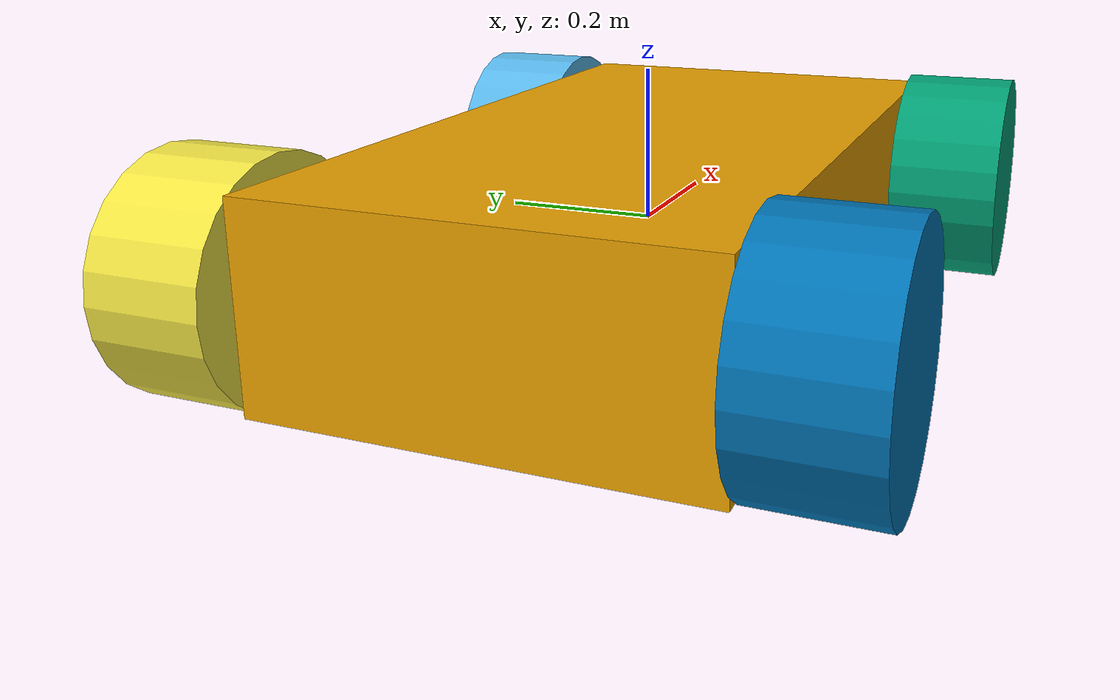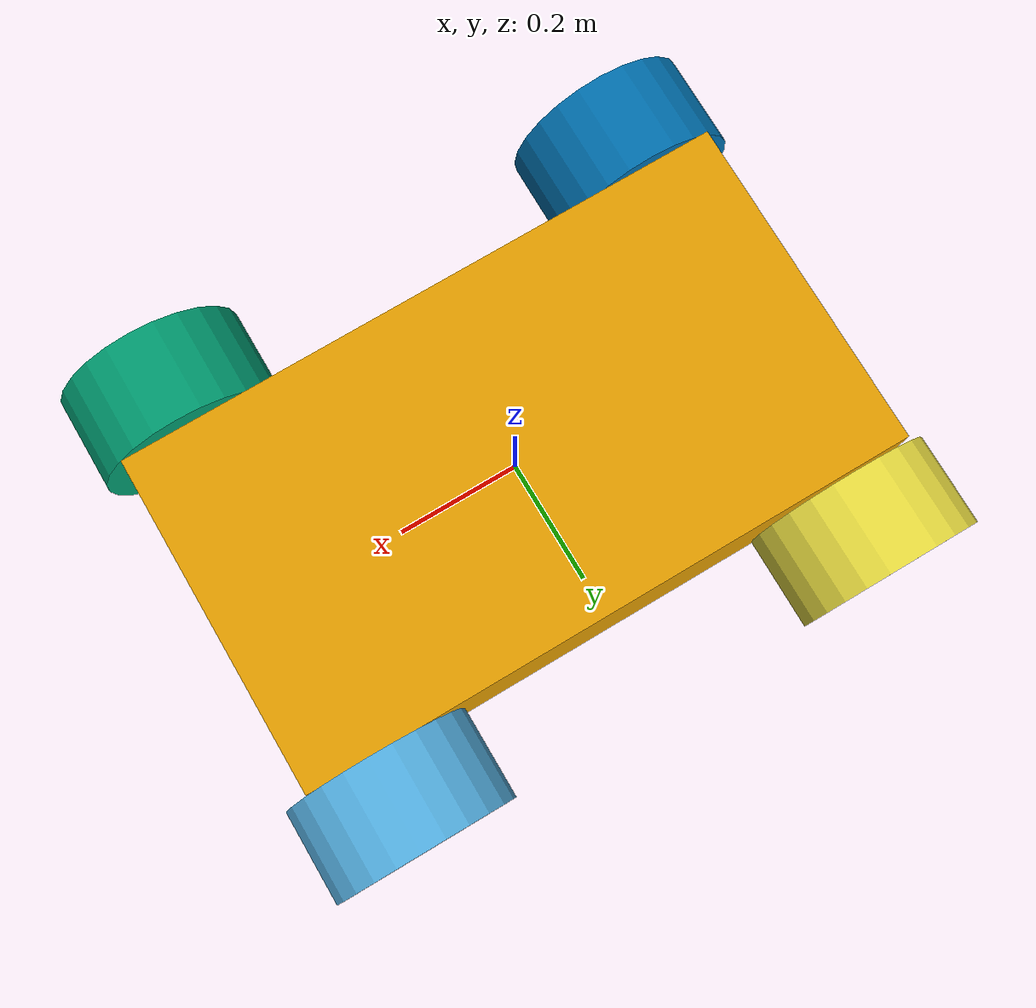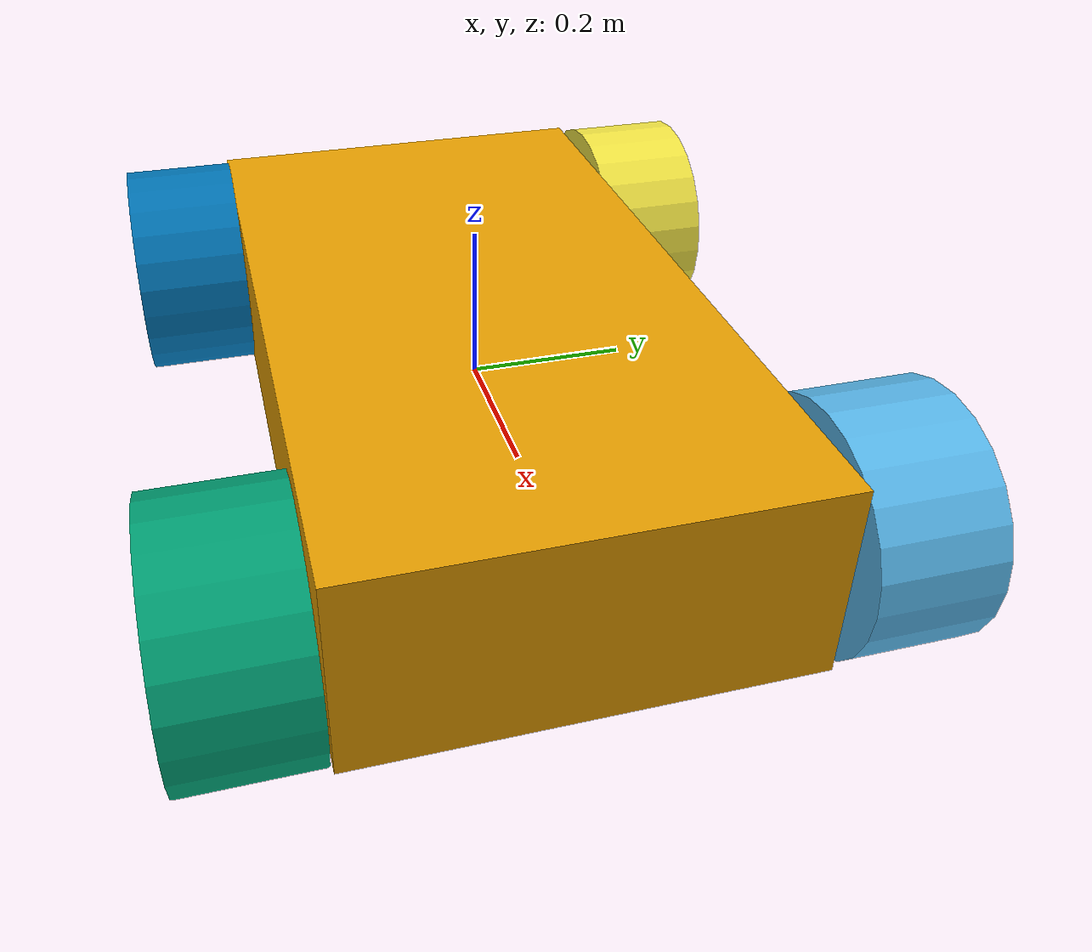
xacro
<?xml version="1.0"?>
<robot xmlns:xacro="http://www.ros.org/wiki/xacro" name="my_robot">

    <xacro:property name="body_length" value="1.0" />
    <xacro:property name="body_width" value="0.55" />
    <xacro:property name="wheel_width" value="0.15" />
    <xacro:property name="wheel_radius" value="0.15" />
    <xacro:macro name="set_bl_as_parent_link">
        <parent link="base_link" />
    </xacro:macro>

    <!--DEFINITION DE MACRO-->
    <xacro:macro name="create_wheel" params="position">

        <link name="${position}_wheel">
                <visual>
                    <xacro:if value="${position=='fl'}">
                        <origin xyz="0.0 ${wheel_width/2} 0.0" rpy="${pi/2} 0.0 0.0" />
                    </xacro:if>

                    <xacro:if value="${position=='fr'}">
                        <origin xyz="0.0 ${wheel_width-0.23} 0.0" rpy="${pi/2} 0.0 0.0" />
                    </xacro:if>

                    <xacro:if value="${position=='rl'}">
                        <origin xyz="0.0 ${-wheel_width+0.23} 0.0" rpy="${pi/2} 0.0 0.0" />
                    </xacro:if>

                    <xacro:if value="${position=='rr'}">
                        <origin xyz="0.0 ${-wheel_width/2} 0.0" rpy="${pi/2} 0.0 0.0" />
                    </xacro:if>

                    <geometry>
                        <cylinder radius="${wheel_radius}" length="${wheel_width}"/>
                    </geometry>

                </visual>
            </link>

            <joint name="${position}_wheel_joint" type="continuous">
                <xacro:if value="${position=='fl'}">
                    <origin xyz="${body_length/2-0.1} ${body_width/2} 0.0" />
                </xacro:if>

                <xacro:if value="${position=='fr'}">
                    <origin xyz="${body_length/2-0.1} ${-body_width/2} 0.0" />
                </xacro:if>

                <xacro:if value="${position=='rl'}">
                    <origin xyz="${-body_length/2+0.1} ${body_width/2} 0.0" />
                </xacro:if>

                <xacro:if value="${position=='rr'}">
                    <origin xyz="${-body_length/2+0.1} ${-body_width/2} 0.0" />
                </xacro:if>

                <!--origin xyz="0.4 ${body_width/2} 0.0"-->
                <!--xacro:set_bl_as_parent_link-->
                <parent link="base_link"/>
                <child link="${position}_wheel"/>
                <axis xyz="0.0 1.0 0.0" />
            </joint>
    </xacro:macro>

    <!--SECTION PRINCIPALE-->
    <link name="base_link">
        <visual>
            <geometry>
                <box size="${body_length} ${body_width} 0.25" />
            </geometry>
        </visual>
    </link>
    <xacro:create_wheel position="fl"/>
    <xacro:create_wheel position="fr"/>
    <xacro:create_wheel position="rl"/>
    <xacro:create_wheel position="rr"/>

</robot>
